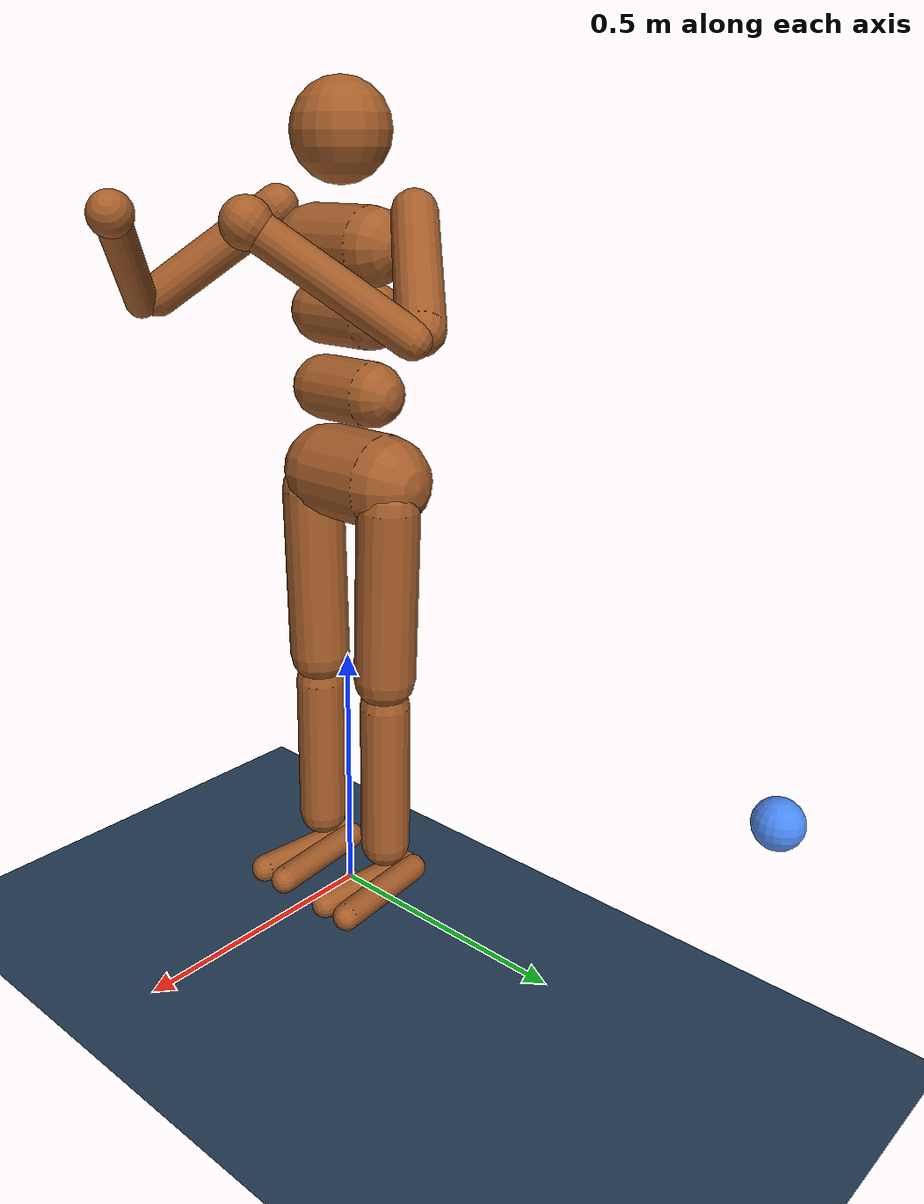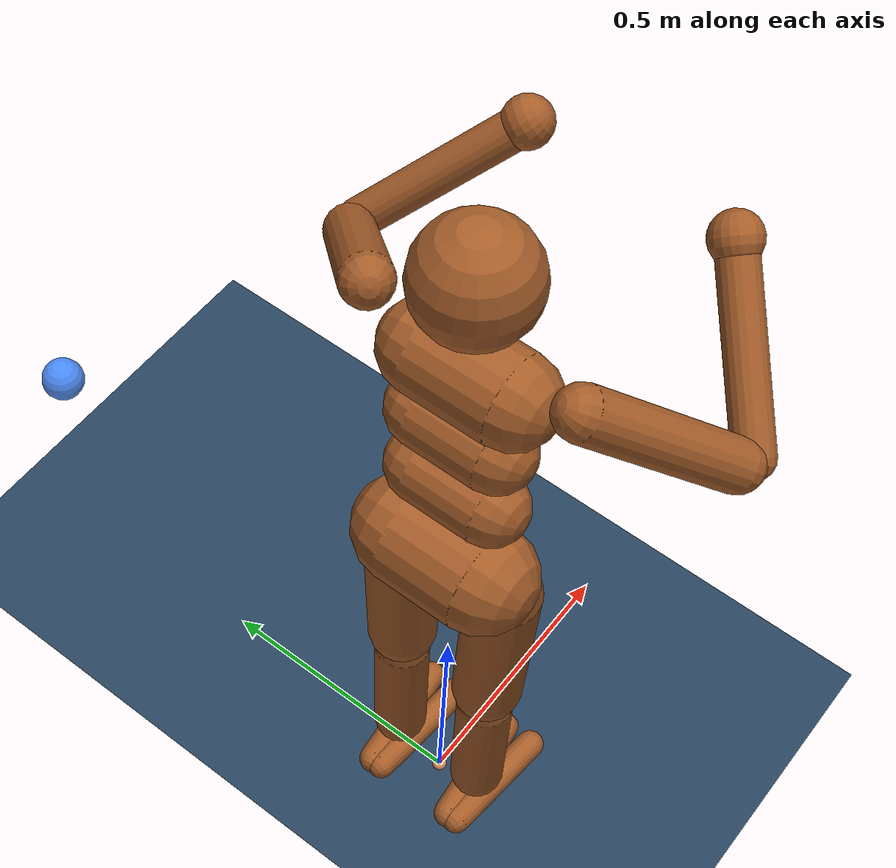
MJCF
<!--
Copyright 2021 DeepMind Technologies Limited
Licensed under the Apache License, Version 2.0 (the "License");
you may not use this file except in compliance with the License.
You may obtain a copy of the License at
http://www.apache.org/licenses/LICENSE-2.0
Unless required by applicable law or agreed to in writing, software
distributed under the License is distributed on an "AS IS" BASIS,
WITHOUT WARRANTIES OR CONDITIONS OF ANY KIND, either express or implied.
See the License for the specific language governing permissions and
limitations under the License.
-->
<mujoco model="holos_humanoid">
  <option timestep="0.005" gravity="0 0 -9.81"/>

  <visual>
    <map force="0.1" zfar="30"/>
    <rgba haze="0.15 0.25 0.35 1"/>
    <global offwidth="2560" offheight="1440" elevation="-20" azimuth="120"/>
  </visual>

  <statistic center="0 0 0.7"/>

  <asset>
    <texture type="skybox" builtin="gradient" rgb1=".3 .5 .7" rgb2="0 0 0" width="32" height="512"/>
    <texture name="body" type="cube" builtin="flat" mark="cross" width="128" height="128" rgb1="0.8 0.6 0.4" rgb2="0.8 0.6 0.4" markrgb="1 1 1"/>
    <material name="body" texture="body" texuniform="true" rgba="0.8 0.6 .4 1"/>
    <texture name="grid" type="2d" builtin="checker" width="512" height="512" rgb1=".1 .2 .3" rgb2=".2 .3 .4"/>
    <material name="grid" texture="grid" texrepeat="1 1" texuniform="true" reflectance=".2"/>
  </asset>

  <default>
    <motor ctrlrange="-1 1" ctrllimited="true"/>
    <default class="body">

      <!-- geoms -->
      <geom type="capsule" condim="1" friction=".7" solimp=".9 .99 .003" solref=".015 1" material="body" group="1"/>
      <default class="thigh">
        <geom size=".06"/>
      </default>
      <default class="shin">
        <geom fromto="0 0 0 0 0 -.3"  size=".049"/>
      </default>
      <default class="foot">
        <geom size=".027"/>
        <default class="foot1">
          <geom fromto="-.07 -.01 0 .14 -.03 0"/>
        </default>
        <default class="foot2">
          <geom fromto="-.07 .01 0 .14  .03 0"/>
        </default>
      </default>
      <default class="arm_upper">
        <geom size=".04"/>
      </default>
      <default class="arm_lower">
        <geom size=".031"/>
      </default>
      <default class="hand">
        <geom type="sphere" size=".04"/>
      </default>

      <!-- joints -->
      <joint type="hinge" damping=".2" stiffness="1" armature=".01" limited="true" solimplimit="0 .99 .01"/>
      <default class="joint_big">
        <joint damping="5" stiffness="10"/>
        <default class="hip_x">
          <joint range="-30 10"/>
        </default>
        <default class="hip_z">
          <joint range="-60 35"/>
        </default>
        <default class="hip_y">
          <joint axis="0 1 0" range="-150 20"/>
        </default>
        <default class="joint_big_stiff">
          <joint stiffness="20"/>
        </default>
      </default>
      <default class="knee">
        <joint pos="0 0 .02" axis="0 -1 0" range="-160 2"/>
      </default>
      <default class="ankle">
        <joint range="-50 50"/>
        <default class="ankle_y">
          <joint pos="0 0 .08" axis="0 1 0" stiffness="6"/>
        </default>
        <default class="ankle_x">
          <joint pos="0 0 .04" stiffness="3"/>
        </default>
      </default>
      <default class="shoulder">
        <joint range="-85 60"/>
      </default>
      <default class="elbow">
        <joint range="-100 50" stiffness="0"/>
      </default>
    </default>
  </default>

  <worldbody>
    <geom name="floor" size="0 0 .05" type="plane" material="grid" condim="3"/>
    <light name="spotlight" mode="targetbodycom" target="torso" diffuse=".8 .8 .8" specular="0.3 0.3 0.3" pos="0 -6 4" cutoff="30"/>
    <light name="top" pos="0 0 2" mode="trackcom"/>
    <body name="torso" pos="0 0 1.282" childclass="body">
      <camera name="back" pos="-3 0 1" xyaxes="0 -1 0 1 0 2" mode="trackcom"/>
      <camera name="side" pos="0 -3 1" xyaxes="1 0 0 0 1 2" mode="trackcom"/>
      <freejoint name="root"/>
      <geom name="torso" fromto="0 -.07 0 0 .07 0" size=".07"/>
      <geom name="waist_upper" fromto="-.01 -.06 -.12 -.01 .06 -.12" size=".06"/>
      <body name="head" pos="0 0 .19">
        <geom name="head" type="sphere" size=".09"/>
        <camera name="egocentric" pos=".09 0 0" xyaxes="0 -1 0 .1 0 1" fovy="80"/>
      </body>
      <body name="waist_lower" pos="-.01 0 -.26">
        <geom name="waist_lower" fromto="0 -.06 0 0 .06 0" size=".06"/>
        <joint name="abdomen_z" pos="0 0 .065" axis="0 0 1" range="-45 45" class="joint_big_stiff"/>
        <joint name="abdomen_y" pos="0 0 .065" axis="0 1 0" range="-75 30" class="joint_big"/>
        <body name="pelvis" pos="0 0 -.165">
          <joint name="abdomen_x" pos="0 0 .1" axis="1 0 0" range="-35 35" class="joint_big"/>
          <geom name="butt" fromto="-.02 -.07 0 -.02 .07 0" size=".09"/>
          <body name="thigh_right" pos="0 -.1 -.04">
            <joint name="hip_x_right" axis="1 0 0" class="hip_x"/>
            <joint name="hip_z_right" axis="0 0 1" class="hip_z"/>
            <joint name="hip_y_right" class="hip_y"/>
            <geom name="thigh_right" fromto="0 0 0 0 .01 -.34" class="thigh"/>
            <body name="shin_right" pos="0 .01 -.4">
              <joint name="knee_right" class="knee"/>
              <geom name="shin_right" class="shin"/>
              <body name="foot_right" pos="0 0 -.39">
                <joint name="ankle_y_right" class="ankle_y"/>
                <joint name="ankle_x_right" class="ankle_x" axis="1 0 .5"/>
                <geom name="foot1_right" class="foot1"/>
                <geom name="foot2_right" class="foot2"/>
              </body>
            </body>
          </body>
          <body name="thigh_left" pos="0 .1 -.04">
            <joint name="hip_x_left" axis="-1 0 0" class="hip_x"/>
            <joint name="hip_z_left" axis="0 0 -1" class="hip_z"/>
            <joint name="hip_y_left" class="hip_y"/>
            <geom name="thigh_left" fromto="0 0 0 0 -.01 -.34" class="thigh"/>
            <body name="shin_left" pos="0 -.01 -.4">
              <joint name="knee_left" class="knee"/>
              <geom name="shin_left" fromto="0 0 0 0 0 -.3" class="shin"/>
              <body name="foot_left" pos="0 0 -.39">
                <joint name="ankle_y_left" class="ankle_y"/>
                <joint name="ankle_x_left" class="ankle_x" axis="-1 0 -.5"/>
                <geom name="foot1_left" class="foot1"/>
                <geom name="foot2_left" class="foot2"/>
              </body>
            </body>
          </body>
        </body>
      </body>
      <body name="upper_arm_right" pos="0 -.17 .06">
        <joint name="shoulder1_right" axis="2 1 1"  class="shoulder"/>
        <joint name="shoulder2_right" axis="0 -1 1" class="shoulder"/>
        <geom name="upper_arm_right" fromto="0 0 0 .16 -.16 -.16" class="arm_upper"/>
        <body name="lower_arm_right" pos=".18 -.18 -.18">
          <joint name="elbow_right" axis="0 -1 1" class="elbow"/>
          <geom name="lower_arm_right" fromto=".01 .01 .01 .17 .17 .17" class="arm_lower"/>
          <body name="hand_right" pos=".18 .18 .18">
            <geom name="hand_right" zaxis="1 1 1" class="hand"/>
          </body>
        </body>
      </body>
      <body name="upper_arm_left" pos="0 .17 .06">
        <joint name="shoulder1_left" axis="-2 1 -1" class="shoulder"/>
        <joint name="shoulder2_left" axis="0 -1 -1"  class="shoulder"/>
        <geom name="upper_arm_left" fromto="0 0 0 .16 .16 -.16" class="arm_upper"/>
        <body name="lower_arm_left" pos=".18 .18 -.18">
          <joint name="elbow_left" axis="0 -1 -1" class="elbow"/>
          <geom name="lower_arm_left" fromto=".01 -.01 .01 .17 -.17 .17" class="arm_lower"/>
          <body name="hand_left" pos=".18 -.18 .18">
            <geom name="hand_left" zaxis="1 -1 1" class="hand"/>
          </body>
        </body>
      </body>
    </body>

    <!-- ==================== RIGHT HAND (mocap) ==================== -->

    <body name="r_thumbKnuckle" mocap="true">
      <geom type="sphere" size="0.008" rgba="0.9 0.6 0.4 1" contype="1" conaffinity="1"/>
    </body>
    <body name="r_thumbIntermediateBase" mocap="true">
      <geom type="sphere" size="0.007" rgba="0.9 0.6 0.4 1" contype="1" conaffinity="1"/>
    </body>
    <body name="r_thumbIntermediateTip" mocap="true">
      <geom type="sphere" size="0.007" rgba="0.9 0.6 0.4 1" contype="1" conaffinity="1"/>
    </body>
    <body name="r_thumbTip" mocap="true">
      <geom type="sphere" size="0.006" rgba="0.9 0.6 0.4 1" contype="1" conaffinity="1"/>
    </body>

    <body name="r_indexFingerMetacarpal" mocap="true">
      <geom type="sphere" size="0.008" rgba="0.9 0.6 0.4 1" contype="1" conaffinity="1"/>
    </body>
    <body name="r_indexFingerKnuckle" mocap="true">
      <geom type="sphere" size="0.008" rgba="0.9 0.6 0.4 1" contype="1" conaffinity="1"/>
    </body>
    <body name="r_indexFingerIntermediateBase" mocap="true">
      <geom type="sphere" size="0.007" rgba="0.9 0.6 0.4 1" contype="1" conaffinity="1"/>
    </body>
    <body name="r_indexFingerIntermediateTip" mocap="true">
      <geom type="sphere" size="0.007" rgba="0.9 0.6 0.4 1" contype="1" conaffinity="1"/>
    </body>
    <body name="r_indexFingerTip" mocap="true">
      <geom type="sphere" size="0.006" rgba="0.9 0.6 0.4 1" contype="1" conaffinity="1"/>
    </body>

    <body name="r_middleFingerMetacarpal" mocap="true">
      <geom type="sphere" size="0.008" rgba="0.9 0.6 0.4 1" contype="1" conaffinity="1"/>
    </body>
    <body name="r_middleFingerKnuckle" mocap="true">
      <geom type="sphere" size="0.008" rgba="0.9 0.6 0.4 1" contype="1" conaffinity="1"/>
    </body>
    <body name="r_middleFingerIntermediateBase" mocap="true">
      <geom type="sphere" size="0.007" rgba="0.9 0.6 0.4 1" contype="1" conaffinity="1"/>
    </body>
    <body name="r_middleFingerIntermediateTip" mocap="true">
      <geom type="sphere" size="0.007" rgba="0.9 0.6 0.4 1" contype="1" conaffinity="1"/>
    </body>
    <body name="r_middleFingerTip" mocap="true">
      <geom type="sphere" size="0.006" rgba="0.9 0.6 0.4 1" contype="1" conaffinity="1"/>
    </body>

    <body name="r_ringFingerMetacarpal" mocap="true">
      <geom type="sphere" size="0.008" rgba="0.9 0.6 0.4 1" contype="1" conaffinity="1"/>
    </body>
    <body name="r_ringFingerKnuckle" mocap="true">
      <geom type="sphere" size="0.008" rgba="0.9 0.6 0.4 1" contype="1" conaffinity="1"/>
    </body>
    <body name="r_ringFingerIntermediateBase" mocap="true">
      <geom type="sphere" size="0.007" rgba="0.9 0.6 0.4 1" contype="1" conaffinity="1"/>
    </body>
    <body name="r_ringFingerIntermediateTip" mocap="true">
      <geom type="sphere" size="0.007" rgba="0.9 0.6 0.4 1" contype="1" conaffinity="1"/>
    </body>
    <body name="r_ringFingerTip" mocap="true">
      <geom type="sphere" size="0.006" rgba="0.9 0.6 0.4 1" contype="1" conaffinity="1"/>
    </body>

    <body name="r_littleFingerMetacarpal" mocap="true">
      <geom type="sphere" size="0.008" rgba="0.9 0.6 0.4 1" contype="1" conaffinity="1"/>
    </body>
    <body name="r_littleFingerKnuckle" mocap="true">
      <geom type="sphere" size="0.008" rgba="0.9 0.6 0.4 1" contype="1" conaffinity="1"/>
    </body>
    <body name="r_littleFingerIntermediateBase" mocap="true">
      <geom type="sphere" size="0.007" rgba="0.9 0.6 0.4 1" contype="1" conaffinity="1"/>
    </body>
    <body name="r_littleFingerIntermediateTip" mocap="true">
      <geom type="sphere" size="0.007" rgba="0.9 0.6 0.4 1" contype="1" conaffinity="1"/>
    </body>
    <body name="r_littleFingerTip" mocap="true">
      <geom type="sphere" size="0.006" rgba="0.9 0.6 0.4 1" contype="1" conaffinity="1"/>
    </body>

    <body name="r_forearmWrist" mocap="true">
      <geom type="sphere" size="0.012" rgba="0.9 0.6 0.4 1" contype="1" conaffinity="1"/>
    </body>
    <body name="r_forearmArm" mocap="true">
      <geom type="sphere" size="0.014" rgba="0.9 0.6 0.4 1" contype="1" conaffinity="1"/>
    </body>

    <!-- ==================== LEFT HAND (mocap) ==================== -->

    <body name="l_thumbKnuckle" mocap="true">
      <geom type="sphere" size="0.008" rgba="0.4 0.6 0.9 1" contype="1" conaffinity="1"/>
    </body>
    <body name="l_thumbIntermediateBase" mocap="true">
      <geom type="sphere" size="0.007" rgba="0.4 0.6 0.9 1" contype="1" conaffinity="1"/>
    </body>
    <body name="l_thumbIntermediateTip" mocap="true">
      <geom type="sphere" size="0.007" rgba="0.4 0.6 0.9 1" contype="1" conaffinity="1"/>
    </body>
    <body name="l_thumbTip" mocap="true">
      <geom type="sphere" size="0.006" rgba="0.4 0.6 0.9 1" contype="1" conaffinity="1"/>
    </body>

    <body name="l_indexFingerMetacarpal" mocap="true">
      <geom type="sphere" size="0.008" rgba="0.4 0.6 0.9 1" contype="1" conaffinity="1"/>
    </body>
    <body name="l_indexFingerKnuckle" mocap="true">
      <geom type="sphere" size="0.008" rgba="0.4 0.6 0.9 1" contype="1" conaffinity="1"/>
    </body>
    <body name="l_indexFingerIntermediateBase" mocap="true">
      <geom type="sphere" size="0.007" rgba="0.4 0.6 0.9 1" contype="1" conaffinity="1"/>
    </body>
    <body name="l_indexFingerIntermediateTip" mocap="true">
      <geom type="sphere" size="0.007" rgba="0.4 0.6 0.9 1" contype="1" conaffinity="1"/>
    </body>
    <body name="l_indexFingerTip" mocap="true">
      <geom type="sphere" size="0.006" rgba="0.4 0.6 0.9 1" contype="1" conaffinity="1"/>
    </body>

    <body name="l_middleFingerMetacarpal" mocap="true">
      <geom type="sphere" size="0.008" rgba="0.4 0.6 0.9 1" contype="1" conaffinity="1"/>
    </body>
    <body name="l_middleFingerKnuckle" mocap="true">
      <geom type="sphere" size="0.008" rgba="0.4 0.6 0.9 1" contype="1" conaffinity="1"/>
    </body>
    <body name="l_middleFingerIntermediateBase" mocap="true">
      <geom type="sphere" size="0.007" rgba="0.4 0.6 0.9 1" contype="1" conaffinity="1"/>
    </body>
    <body name="l_middleFingerIntermediateTip" mocap="true">
      <geom type="sphere" size="0.007" rgba="0.4 0.6 0.9 1" contype="1" conaffinity="1"/>
    </body>
    <body name="l_middleFingerTip" mocap="true">
      <geom type="sphere" size="0.006" rgba="0.4 0.6 0.9 1" contype="1" conaffinity="1"/>
    </body>

    <body name="l_ringFingerMetacarpal" mocap="true">
      <geom type="sphere" size="0.008" rgba="0.4 0.6 0.9 1" contype="1" conaffinity="1"/>
    </body>
    <body name="l_ringFingerKnuckle" mocap="true">
      <geom type="sphere" size="0.008" rgba="0.4 0.6 0.9 1" contype="1" conaffinity="1"/>
    </body>
    <body name="l_ringFingerIntermediateBase" mocap="true">
      <geom type="sphere" size="0.007" rgba="0.4 0.6 0.9 1" contype="1" conaffinity="1"/>
    </body>
    <body name="l_ringFingerIntermediateTip" mocap="true">
      <geom type="sphere" size="0.007" rgba="0.4 0.6 0.9 1" contype="1" conaffinity="1"/>
    </body>
    <body name="l_ringFingerTip" mocap="true">
      <geom type="sphere" size="0.006" rgba="0.4 0.6 0.9 1" contype="1" conaffinity="1"/>
    </body>

    <body name="l_littleFingerMetacarpal" mocap="true">
      <geom type="sphere" size="0.008" rgba="0.4 0.6 0.9 1" contype="1" conaffinity="1"/>
    </body>
    <body name="l_littleFingerKnuckle" mocap="true">
      <geom type="sphere" size="0.008" rgba="0.4 0.6 0.9 1" contype="1" conaffinity="1"/>
    </body>
    <body name="l_littleFingerIntermediateBase" mocap="true">
      <geom type="sphere" size="0.007" rgba="0.4 0.6 0.9 1" contype="1" conaffinity="1"/>
    </body>
    <body name="l_littleFingerIntermediateTip" mocap="true">
      <geom type="sphere" size="0.007" rgba="0.4 0.6 0.9 1" contype="1" conaffinity="1"/>
    </body>
    <body name="l_littleFingerTip" mocap="true">
      <geom type="sphere" size="0.006" rgba="0.4 0.6 0.9 1" contype="1" conaffinity="1"/>
    </body>

    <body name="l_forearmWrist" mocap="true">
      <geom type="sphere" size="0.012" rgba="0.4 0.6 0.9 1" contype="1" conaffinity="1"/>
    </body>
    <body name="l_forearmArm" mocap="true">
      <geom type="sphere" size="0.014" rgba="0.4 0.6 0.9 1" contype="1" conaffinity="1"/>
    </body>

    <!-- ==================== PRESSURE BALL ==================== -->
    <body name="pressure_ball" pos="0 0.9 0.5">
      <freejoint name="ball_free"/>
      <geom name="ball_geom" type="sphere" size="0.04"
            rgba="0.2 0.5 1.0 0.85"
            contype="1" conaffinity="1"
            mass="0.05"/>
    </body>

  </worldbody>

  <contact>
    <exclude body1="waist_lower" body2="thigh_right"/>
    <exclude body1="waist_lower" body2="thigh_left"/>
  </contact>

  <tendon>
    <fixed name="hamstring_right" limited="true" range="-0.3 2">
      <joint joint="hip_y_right" coef=".5"/>
      <joint joint="knee_right" coef="-.5"/>
    </fixed>
    <fixed name="hamstring_left" limited="true" range="-0.3 2">
      <joint joint="hip_y_left" coef=".5"/>
      <joint joint="knee_left" coef="-.5"/>
    </fixed>
  </tendon>

  <actuator>
    <motor name="abdomen_y"      gear="100" joint="abdomen_y"/>
    <motor name="abdomen_z"      gear="100" joint="abdomen_z"/>
    <motor name="abdomen_x"      gear="100" joint="abdomen_x"/>
    <motor name="hip_x_right"    gear="100" joint="hip_x_right"/>
    <motor name="hip_z_right"    gear="100" joint="hip_z_right"/>
    <motor name="hip_y_right"    gear="300" joint="hip_y_right"/>
    <motor name="knee_right"     gear="200" joint="knee_right"/>
    <motor name="ankle_y_right"  gear="100" joint="ankle_y_right"/>
    <motor name="ankle_x_right"  gear="100" joint="ankle_x_right"/>
    <motor name="hip_x_left"     gear="100" joint="hip_x_left"/>
    <motor name="hip_z_left"     gear="100" joint="hip_z_left"/>
    <motor name="hip_y_left"     gear="300" joint="hip_y_left"/>
    <motor name="knee_left"      gear="200" joint="knee_left"/>
    <motor name="ankle_y_left"   gear="100" joint="ankle_y_left"/>
    <motor name="ankle_x_left"   gear="100" joint="ankle_x_left"/>
    <motor name="shoulder1_right" gear="25" joint="shoulder1_right"/>
    <motor name="shoulder2_right" gear="25" joint="shoulder2_right"/>
    <motor name="elbow_right"    gear="25" joint="elbow_right"/>
    <motor name="shoulder1_left"  gear="25" joint="shoulder1_left"/>
    <motor name="shoulder2_left"  gear="25" joint="shoulder2_left"/>
    <motor name="elbow_left"     gear="25" joint="elbow_left"/>
  </actuator>

  <keyframe>
    <key name="stand"
         qpos="0 0 1.282
               1 0 0 0
               0 0 0
               0 0 0 0 0 0
               0 0 0 0 0 0
               0 0 0
               0 0 0"/>
  </keyframe>

</mujoco>
